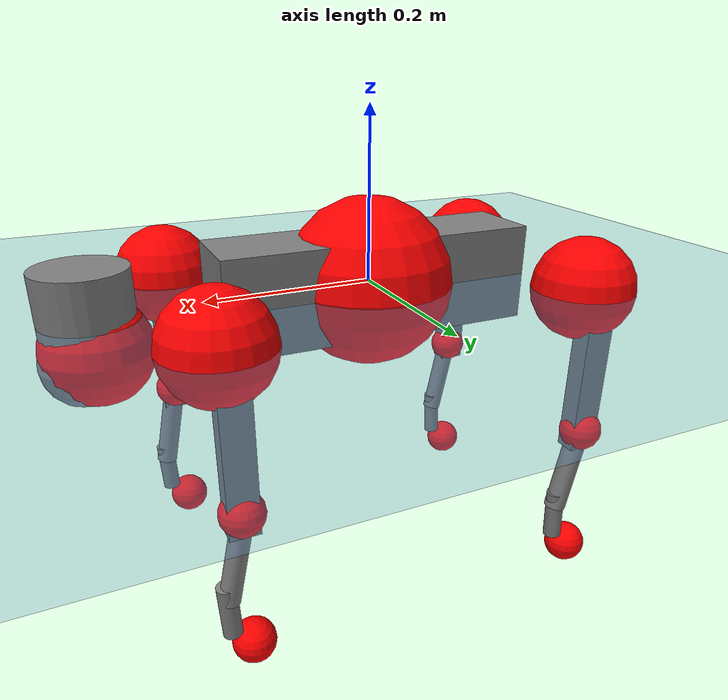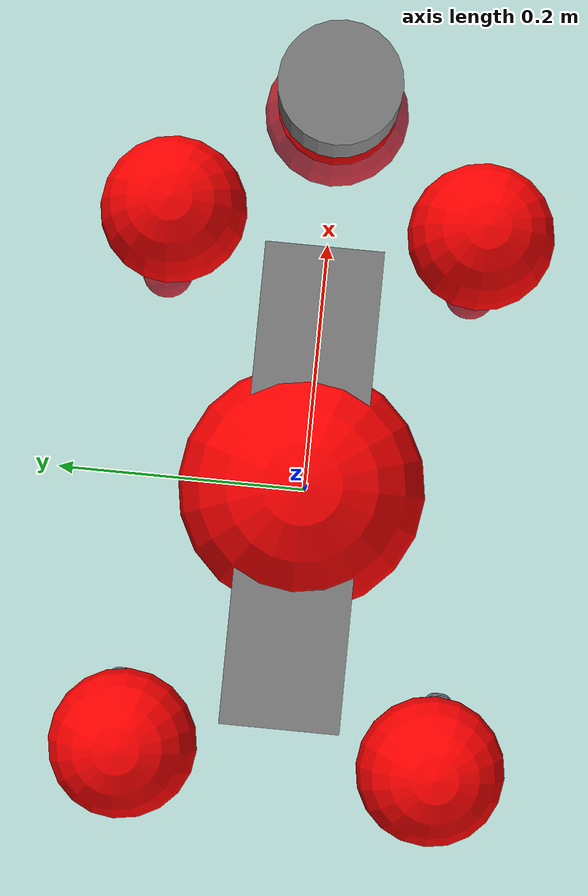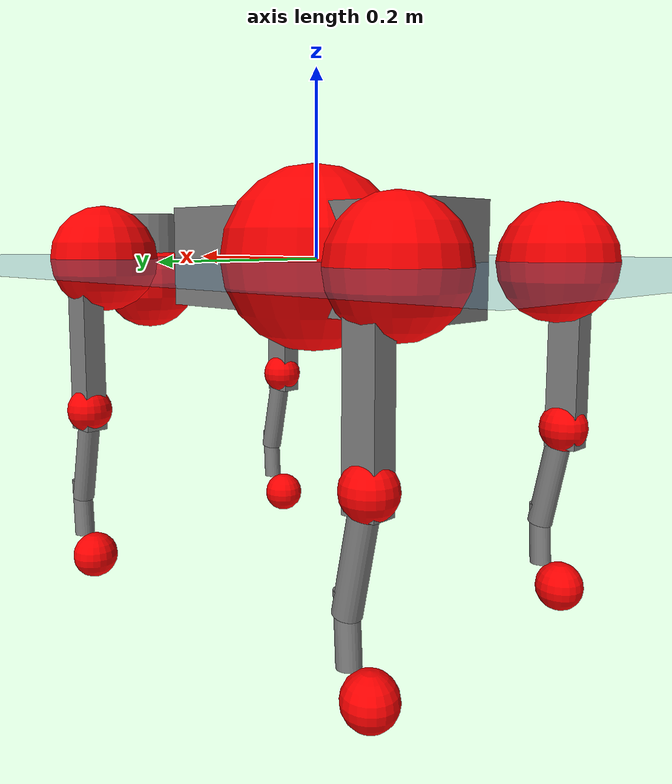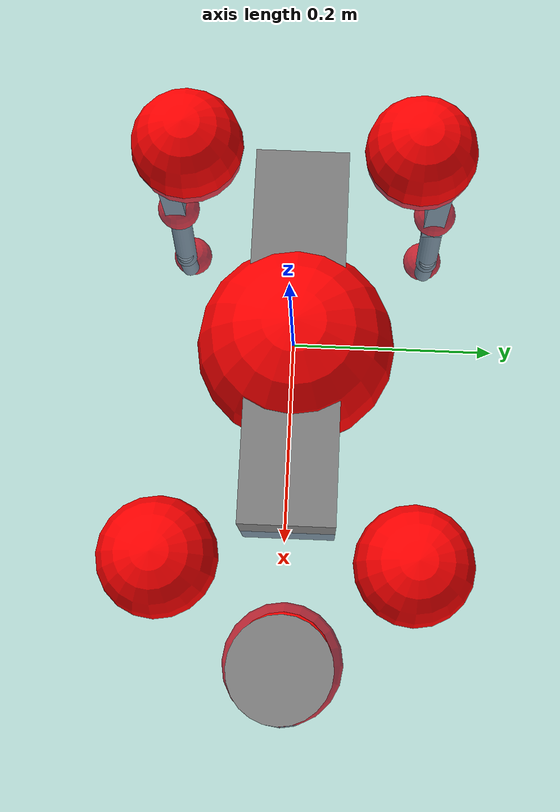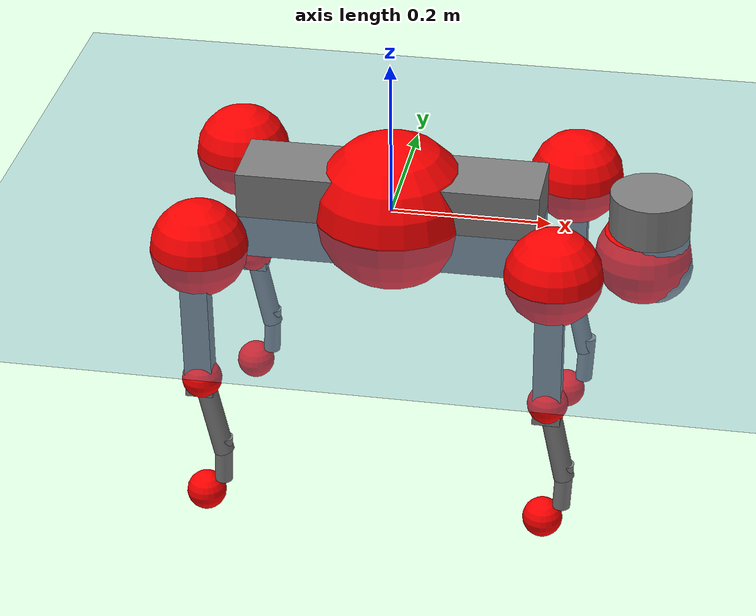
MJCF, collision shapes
<mujoco model="go2">
  <compiler angle="radian" assetdir="assets" balanceinertia="true" inertiafromgeom="false"/>

  <option timestep="0.005" density="1.2" viscosity="2e-05"/>

  <size nkey="1"/>

  <visual>
    <quality shadowsize="8192"/>
    <map shadowclip="0.5"/>
  </visual>

  <default>
    <default class="/">
      <geom contype="0" conaffinity="0" group="1" solref="-1000 -80"/>
      <site size="0.01 0.005 0.005" group="5"/>
      <general forcelimited="true" biastype="affine" gainprm="20" biasprm="0 -20 -0.5"/>
      <default class="go2">
        <joint armature="0.01" damping="0.01" frictionloss="0.2"/>
        <geom condim="1" margin="0.001"/>
        <default class="visual">
          <geom type="mesh" group="2"/>
        </default>
        <default class="collision">
          <geom group="3"/>
          <default class="foot">
            <geom size="0.022 0 0" condim="6" priority="1" friction="0.8 0.02 0.01" solimp="0.015 1 0.022"/>
          </default>
        </default>
        <default class="reward_collision_sphere">
          <geom group="5" rgba="1 0 0 1"/>
        </default>
      </default>
    </default>
  </default>

  <asset>
    <texture type="skybox" colorspace="auto" name="//unnamed_texture_0" builtin="gradient" rgb1="0.95 0.95 0.95" rgb2="0.95 0.95 0.95" width="100" height="600"/>
    <texture type="2d" colorspace="auto" name="texplane" builtin="checker" rgb1="0.345 0.575 0.748" rgb2="0.345 0.575 0.748" markrgb="1 1 1" width="512" height="512"/>
    <material name="MatPlane" class="/" texture="texplane" texuniform="true" texrepeat="2 2" specular="0.9"/>
    <material name="metal" class="/" rgba="0.9 0.95 0.95 1"/>
    <material name="black" class="/" rgba="0 0 0 1"/>
    <material name="white" class="/"/>
    <material name="gray" class="/" rgba="0.671705 0.692426 0.77427 1"/>
    <mesh name="base_0" class="/" file="base_0.obj"/>
    <mesh name="base_1" class="/" file="base_1.obj"/>
    <mesh name="base_2" class="/" file="base_2.obj"/>
    <mesh name="base_3" class="/" file="base_3.obj"/>
    <mesh name="base_4" class="/" file="base_4.obj"/>
    <mesh name="hip_0" class="/" file="hip_0.obj"/>
    <mesh name="hip_1" class="/" file="hip_1.obj"/>
    <mesh name="thigh_0" class="/" file="thigh_0.obj"/>
    <mesh name="thigh_1" class="/" file="thigh_1.obj"/>
    <mesh name="thigh_mirror_0" class="/" file="thigh_mirror_0.obj"/>
    <mesh name="thigh_mirror_1" class="/" file="thigh_mirror_1.obj"/>
    <mesh name="calf_0" class="/" file="calf_0.obj"/>
    <mesh name="calf_1" class="/" file="calf_1.obj"/>
    <mesh name="calf_mirror_0" class="/" file="calf_mirror_0.obj"/>
    <mesh name="calf_mirror_1" class="/" file="calf_mirror_1.obj"/>
    <mesh name="foot" class="/" file="foot.obj"/>
  </asset>

  <worldbody>
    <geom name="floor" class="/" size="100 100 0.125" type="plane" group="0" material="MatPlane"/>
    <light name="toplight_shadow" class="/" pos="0 0 5" dir="0.0990148 0.0990148 -0.990148" type="directional" ambient="0.04 0.04 0.04" diffuse="0.55 0.55 0.55" specular="0.12 0.12 0.12"/>
    <light name="toplight_fill" class="/" pos="0 0 5" dir="0.0990148 0.0990148 -0.990148" type="directional" castshadow="false" ambient="0.04 0.04 0.04" diffuse="0.3 0.3 0.3" specular="0.08 0.08 0.08"/>
    <body name="trunk" childclass="go2" pos="0.00128656 0.00240956 0.000969952" quat="1 -0.000343818 -0.000368337 -0.000252873">
      <inertial pos="0.0232945 0.000354144 -0.00443556" quat="0.0126359 0.710451 -0.00426845 0.703621" mass="7.12625" diaginertia="0.19877 0.15338 0.00821133"/>
      <joint name="//unnamed_joint_0" type="free" armature="0" damping="0" frictionloss="0"/>
      <geom name="//unnamed_geom_1" class="visual" material="black" mesh="base_0"/>
      <geom name="//unnamed_geom_2" class="visual" material="black" mesh="base_1"/>
      <geom name="//unnamed_geom_3" class="visual" material="black" mesh="base_2"/>
      <geom name="//unnamed_geom_4" class="visual" material="white" mesh="base_3"/>
      <geom name="//unnamed_geom_5" class="visual" material="gray" mesh="base_4"/>
      <geom name="trunk_1" class="collision" size="0.188731 0.0469068 0.0571911" type="box"/>
      <geom name="trunk_2" class="collision" size="0.0501676 0.0451509" pos="0.320068 0 0.00804888" type="cylinder"/>
      <geom name="trunk_3" class="collision" size="0.0471576" pos="0.329052 0 -0.0482933"/>
      <geom name="//unnamed_geom_9" class="reward_collision_sphere" size="0.100335"/>
      <geom name="//unnamed_geom_10" class="reward_collision_sphere" size="0.0602012" pos="0.314452 0 -0.0362199"/>
      <site name="imu" pos="-0.0212854 0.00135883 0.0323104" size="0.0100335"/>
      <camera name="track" pos="0 -2.16425 0" quat="0.707107 0.707107 0 0" mode="trackcom"/>
      <camera name="ego_camera" pos="0.35039 0 0.0362199" quat="-0.5 -0.5 0.5 0.5"/>
      <body name="FL_hip" pos="0.215884 0.0497324 -0.00193422" quat="1 -0.000292074 -0.000381268 -0.000533296">
        <inertial pos="-0.00690537 -4.58812e-05 0.000273467" quat="0.496814 0.500965 0.504927 0.497251" mass="0.685479" diaginertia="0.00158292 0.000866753 0.000164923"/>
        <joint name="FL_hip_joint" pos="0 0 0" axis="0.99999 0.00189633 0.004047" stiffness="0.00328234" range="-1.03012 1.0478" armature="0.00990258" damping="0.0130055" frictionloss="0.228436"/>
        <geom name="//unnamed_geom_11" class="visual" material="metal" mesh="hip_0"/>
        <geom name="//unnamed_geom_12" class="visual" material="gray" mesh="hip_1"/>
        <geom name="//unnamed_geom_13" class="collision" size="0.0461542 0.0200671" pos="0 0.0865702 0" quat="0.707107 0.707107 0 0" type="cylinder"/>
        <geom name="//unnamed_geom_14" class="reward_collision_sphere" size="0.0602012" pos="0 0.0757489 0"/>
        <body name="FL_thigh" pos="-0.00309267 0.102871 -0.00174277" quat="0.999999 -0.0001011 0.00142822 -0.000150171">
          <inertial pos="-0.00361143 -0.0237748 -0.0262844" quat="0.823491 0.0784186 -0.0235744 0.561388" mass="1.11906" diaginertia="0.0102547 0.00842859 0.000291742"/>
          <joint name="FL_thigh_joint" pos="0 0 0" axis="-0.013132 0.999854 -0.0109337" range="-1.51932 3.49206" armature="0.0110496" damping="0" frictionloss="0.172565"/>
          <geom name="//unnamed_geom_15" class="visual" material="metal" mesh="thigh_0"/>
          <geom name="//unnamed_geom_16" class="visual" material="gray" mesh="thigh_1"/>
          <geom name="//unnamed_geom_17" class="collision" size="0.106857 0.0122911 0.017057" pos="0 0 -0.0857205" quat="0.707107 0 0.707107 0" type="box"/>
          <body name="FL_calf" pos="-0.00108782 -4.17559e-05 -0.170619" quat="0.999999 -0.000297236 0.000391503 0.00118105">
            <inertial pos="0.00978584 -0.00128118 -0.112064" quat="0.711623 0.00485405 -0.00327061 0.702537" mass="0.261029" diaginertia="0.00267599 0.00225963 1.81693e-05"/>
            <joint name="FL_calf_joint" pos="0 0 0" axis="0.00483894 0.999988 -0.000968748" stiffness="0.00529211" range="-2.71781 -0.836808" armature="0.0102346" damping="0" frictionloss="0.192935"/>
            <geom name="//unnamed_geom_18" class="visual" material="gray" mesh="calf_0"/>
            <geom name="//unnamed_geom_19" class="visual" material="black" mesh="calf_1"/>
            <geom name="FL_calf0" class="collision" size="0.0120402 0.0602012" pos="0.00898435 0 -0.0482933" quat="0.994493 0 -0.104807 0" type="cylinder"/>
            <geom name="//unnamed_geom_21" class="collision" size="0.0110369 0.032609" pos="0.0224609 0 -0.119123" quat="0.999688 0 0.0249974 0" type="cylinder"/>
            <geom name="//unnamed_geom_22" class="visual" pos="0 0 -0.171441" quat="1 0 0 0" material="black" mesh="foot"/>
            <geom name="FL_foot" class="foot" size="0.022317" pos="-0.00224609 0 -0.171441"/>
            <geom name="//unnamed_geom_24" class="reward_collision_sphere" size="0.0250838"/>
            <geom name="//unnamed_geom_25" class="reward_collision_sphere" size="0.0250838" pos="-0.00224609 0 -0.171441"/>
            <site name="FL_foot" class="foot" pos="-0.00224609 0 -0.171441" size="0.0100335"/>
          </body>
        </body>
      </body>
      <body name="FR_hip" pos="0.217315 -0.0503909 -0.000726238" quat="1 0.000197141 0.000115629 -0.000141359">
        <inertial pos="-0.00594477 -0.000356407 -0.000123218" quat="0.489347 0.504048 0.498901 0.507516" mass="0.687865" diaginertia="0.00160981 0.000860522 0.000163565"/>
        <joint name="FR_hip_joint" pos="0 0 0" axis="0.999978 -0.00661575 0.00107481" range="-1.06532 1.0352" armature="0.0101459" damping="0.0123886" frictionloss="0.182656"/>
        <geom name="//unnamed_geom_26" class="visual" pos="0 2.41519e-09 1.03593e-07" quat="4.63268e-05 1 0 0" material="metal" mesh="hip_0"/>
        <geom name="//unnamed_geom_27" class="visual" pos="0 3.91532e-09 -2.56224e-07" quat="4.63268e-05 1 0 0" material="gray" mesh="hip_1"/>
        <geom name="//unnamed_geom_28" class="collision" size="0.0461542 0.0200671" pos="0 -0.0865702 0" quat="0.707107 0.707107 0 0" type="cylinder"/>
        <geom name="//unnamed_geom_29" class="reward_collision_sphere" size="0.0602012" pos="0 -0.0757489 0"/>
        <body name="FR_thigh" pos="0.000138563 -0.103104 0.00343168" quat="1 -3.75912e-05 -2.68538e-06 3.37008e-05">
          <inertial pos="-0.00684504 0.0235574 -0.0246549" quat="0.551619 -0.0206357 0.0843488 0.829563" mass="1.19522" diaginertia="0.0107449 0.0088929 0.000304085"/>
          <joint name="FR_thigh_joint" pos="0 0 0" axis="-0.00681565 -0.999923 0.0103742" stiffness="0.00982708" range="-3.4841 1.62622" armature="0.00918487" damping="0.00695764" frictionloss="0.206052"/>
          <geom name="//unnamed_geom_30" class="visual" material="metal" mesh="thigh_mirror_0"/>
          <geom name="//unnamed_geom_31" class="visual" material="gray" mesh="thigh_mirror_1"/>
          <geom name="//unnamed_geom_32" class="collision" size="0.106857 0.0122911 0.017057" pos="0 0 -0.0857205" quat="0.707107 0 0.707107 0" type="box"/>
          <body name="FR_calf" pos="-3.96676e-06 0.00216345 -0.169185" quat="1 -1.40881e-05 1.72699e-05 -6.4179e-06">
            <inertial pos="0.00627594 -0.00195913 -0.112094" quat="0.703018 -0.00576583 0.00222326 0.711145" mass="0.238586" diaginertia="0.00275701 0.00221703 1.79855e-05"/>
            <joint name="FR_calf_joint" pos="0 0 0" axis="0.0121851 -0.999901 -0.00699653" stiffness="0.00266345" range="0.82597 2.73837" armature="0.00988782" damping="0.0128874" frictionloss="0.215108"/>
            <geom name="//unnamed_geom_33" class="visual" material="gray" mesh="calf_mirror_0"/>
            <geom name="//unnamed_geom_34" class="visual" material="black" mesh="calf_mirror_1"/>
            <geom name="FR_calf0" class="collision" size="0.0130436 0.0602012" pos="0.0112304 0 -0.0482933" quat="0.995004 0 -0.0998334 0" type="cylinder"/>
            <geom name="//unnamed_geom_36" class="collision" size="0.0110369 0.032609" pos="0.0224609 0 -0.119123" quat="0.999688 0 0.0249974 0" type="cylinder"/>
            <geom name="//unnamed_geom_37" class="visual" pos="0 0 -0.171441" quat="1 0 0 0" material="black" mesh="foot"/>
            <geom name="FR_foot" class="foot" size="0.0197" pos="-0.00224609 0 -0.171441"/>
            <geom name="//unnamed_geom_39" class="reward_collision_sphere" size="0.0250838"/>
            <geom name="//unnamed_geom_40" class="reward_collision_sphere" size="0.0250838" pos="-0.00224609 0 -0.171441"/>
            <site name="FR_foot" class="foot" pos="-0.00224609 0 -0.171441" size="0.0100335"/>
          </body>
        </body>
      </body>
      <body name="RL_hip" pos="-0.218369 0.0481953 -0.00199787" quat="1 -2.5678e-05 -5.58625e-05 -4.02927e-05">
        <inertial pos="0.00669826 0.00253705 0.000345032" quat="0.509475 0.497507 0.49953 0.493348" mass="0.657757" diaginertia="0.00154314 0.000881376 0.000157971"/>
        <joint name="RL_hip_joint" pos="0 0 0" axis="-0.999906 -0.0105294 -0.00877089" stiffness="0.000985604" range="-0.996181 1.09196" armature="0.0099452" damping="0.0161844" frictionloss="0.179373"/>
        <geom name="//unnamed_geom_41" class="visual" pos="-2.77165e-09 0 -5.43307e-07" quat="4.63268e-05 0 1 0" material="metal" mesh="hip_0"/>
        <geom name="//unnamed_geom_42" class="visual" pos="-4.49317e-09 0 -4.81836e-07" quat="4.63268e-05 0 1 0" material="gray" mesh="hip_1"/>
        <geom name="//unnamed_geom_43" class="collision" size="0.0461542 0.0200671" pos="0 0.0865702 0" quat="0.707107 0.707107 0 0" type="cylinder"/>
        <geom name="//unnamed_geom_44" class="reward_collision_sphere" size="0.0602012" pos="0 0.0757489 0"/>
        <body name="RL_thigh" pos="0.00278491 0.105352 -0.00118055" quat="0.999999 -0.000677945 0.000817658 -0.000562035">
          <inertial pos="-0.00337364 -0.0237592 -0.0273779" quat="0.832858 0.0930358 -0.0186399 0.545293" mass="1.21071" diaginertia="0.010596 0.00882108 0.000306931"/>
          <joint name="RL_thigh_joint" pos="0 0 0" axis="0.00438616 0.999988 -0.00221597" range="-0.471548 4.59639" armature="0.0103917" damping="0.00946324" frictionloss="0.218154"/>
          <geom name="//unnamed_geom_45" class="visual" material="metal" mesh="thigh_0"/>
          <geom name="//unnamed_geom_46" class="visual" material="gray" mesh="thigh_1"/>
          <geom name="//unnamed_geom_47" class="collision" size="0.106857 0.0122911 0.017057" pos="0 0 -0.0857205" quat="0.707107 0 0.707107 0" type="box"/>
          <body name="RL_calf" pos="-0.0024997 0.00138538 -0.171837" quat="1 -5.647e-05 -0.000126395 -0.000104044">
            <inertial pos="0.00621297 -0.000680287 -0.114647" quat="0.715964 -0.00872065 0.0014335 0.698081" mass="0.241459" diaginertia="0.00269464 0.00210654 1.78534e-05"/>
            <joint name="RL_calf_joint" pos="0 0 0" axis="0.00553719 0.999726 0.0227556" range="-2.70381 -0.888439" armature="0.0105777" damping="0" frictionloss="0.179157"/>
            <geom name="//unnamed_geom_48" class="visual" material="gray" mesh="calf_0"/>
            <geom name="//unnamed_geom_49" class="visual" material="black" mesh="calf_1"/>
            <geom name="RL_calf0" class="collision" size="0.0130436 0.0602012" pos="0.0112304 0 -0.0482933" quat="0.995004 0 -0.0998334 0" type="cylinder"/>
            <geom name="//unnamed_geom_51" class="collision" size="0.0110369 0.032609" pos="0.0224609 0 -0.119123" quat="0.999688 0 0.0249974 0" type="cylinder"/>
            <geom name="//unnamed_geom_52" class="visual" pos="0 0 -0.171441" quat="1 0 0 0" material="black" mesh="foot"/>
            <geom name="RL_foot" class="foot" size="0.0194752" pos="-0.00224609 0 -0.171441"/>
            <geom name="//unnamed_geom_54" class="reward_collision_sphere" size="0.0250838"/>
            <geom name="//unnamed_geom_55" class="reward_collision_sphere" size="0.0250838" pos="-0.00224609 0 -0.171441"/>
            <site name="RL_foot" class="foot" pos="-0.00224609 0 -0.171441" size="0.0100335"/>
          </body>
        </body>
      </body>
      <body name="RR_hip" pos="-0.217057 -0.0491377 -0.00257287" quat="0.999999 0.000385188 -0.00100425 -8.14329e-05">
        <inertial pos="0.00856614 0.000729086 3.00782e-05" quat="0.498685 0.495644 0.498325 0.50727" mass="0.679714" diaginertia="0.00162772 0.000910131 0.000166994"/>
        <joint name="RR_hip_joint" pos="0 0 0" axis="-1 -0.000358483 -0.000518789" range="-1.04853 1.08643" armature="0.00895657" damping="0.0193201" frictionloss="0.196236"/>
        <geom name="//unnamed_geom_56" class="visual" pos="2.77023e-09 2.41519e-09 -6.469e-07" quat="2.14617e-09 4.63268e-05 4.63268e-05 -1" material="metal" mesh="hip_0"/>
        <geom name="//unnamed_geom_57" class="visual" pos="4.49668e-09 3.91532e-09 -2.25612e-07" quat="2.14617e-09 4.63268e-05 4.63268e-05 -1" material="gray" mesh="hip_1"/>
        <geom name="//unnamed_geom_58" class="collision" size="0.0461542 0.0200671" pos="0 -0.0865702 0" quat="0.707107 0.707107 0 0" type="cylinder"/>
        <geom name="//unnamed_geom_59" class="reward_collision_sphere" size="0.0602012" pos="0 -0.0757489 0"/>
        <body name="RR_thigh" pos="0.000357748 -0.1055 0.0002038" quat="0.999999 0.000237321 -0.00119881 0.000506803">
          <inertial pos="-0.00298868 0.0251909 -0.0246418" quat="0.552068 -0.0201412 0.086317 0.829075" mass="1.14492" diaginertia="0.0107376 0.00885328 0.000294767"/>
          <joint name="RR_thigh_joint" pos="0 0 0" axis="-0.00422362 -0.999825 0.0182419" range="-4.53112 0.56811" armature="0.0108314" damping="0.00484391" frictionloss="0.172813"/>
          <geom name="//unnamed_geom_60" class="visual" material="metal" mesh="thigh_mirror_0"/>
          <geom name="//unnamed_geom_61" class="visual" material="gray" mesh="thigh_mirror_1"/>
          <geom name="//unnamed_geom_62" class="collision" size="0.106857 0.0122911 0.017057" pos="0 0 -0.0857205" quat="0.707107 0 0.707107 0" type="box"/>
          <body name="RR_calf" pos="0.00162775 0.00115922 -0.17214" quat="1 -4.57497e-05 0.000127314 0.000472306">
            <inertial pos="0.00563421 0.000630089 -0.113345" quat="0.706334 -0.00598988 0.00422486 0.707841" mass="0.251469" diaginertia="0.00259875 0.00223573 1.82142e-05"/>
            <joint name="RR_calf_joint" pos="0 0 0" axis="0.00106128 -0.999988 0.00468242" range="0.792195 2.73606" armature="0.00996277" damping="0.0192957" frictionloss="0.205455"/>
            <geom name="//unnamed_geom_63" class="visual" material="gray" mesh="calf_mirror_0"/>
            <geom name="//unnamed_geom_64" class="visual" material="black" mesh="calf_mirror_1"/>
            <geom name="RR_calf0" class="collision" size="0.0130436 0.0602012" pos="0.0112304 0 -0.0482933" quat="0.995004 0 -0.0998334 0" type="cylinder"/>
            <geom name="//unnamed_geom_66" class="collision" size="0.0110369 0.032609" pos="0.0224609 0 -0.119123" quat="0.999688 0 0.0249974 0" type="cylinder"/>
            <geom name="//unnamed_geom_67" class="visual" pos="0 0 -0.171441" quat="1 0 0 0" material="black" mesh="foot"/>
            <geom name="RR_foot" class="foot" size="0.0218162" pos="-0.00224609 0 -0.171441"/>
            <geom name="//unnamed_geom_69" class="reward_collision_sphere" size="0.0250838"/>
            <geom name="//unnamed_geom_70" class="reward_collision_sphere" size="0.0250838" pos="-0.00224609 0 -0.171441"/>
            <site name="RR_foot" class="foot" pos="-0.00224609 0 -0.171441" size="0.0100335"/>
          </body>
        </body>
      </body>
    </body>
  </worldbody>

  <contact>
    <pair class="/" geom1="floor" geom2="FL_foot" name="//unnamed_contact_0"/>
    <pair class="/" geom1="floor" geom2="FR_foot" name="//unnamed_contact_1"/>
    <pair class="/" geom1="floor" geom2="RL_foot" name="//unnamed_contact_2"/>
    <pair class="/" geom1="floor" geom2="RR_foot" name="//unnamed_contact_3"/>
  </contact>

  <actuator>
    <general name="FL_hip" class="/" joint="FL_hip_joint" forcerange="-23.6974 23.6974" gainprm="20.4038" biasprm="0 -20.4038 -0.522824"/>
    <general name="FL_thigh" class="/" joint="FL_thigh_joint" forcerange="-22.2405 22.2405" gainprm="20.4038" biasprm="0 -20.4038 -0.522824"/>
    <general name="FL_calf" class="/" joint="FL_calf_joint" forcerange="-50.1924 50.1924" gainprm="20.4038" biasprm="0 -20.4038 -0.522824"/>
    <general name="FR_hip" class="/" joint="FR_hip_joint" forcerange="-23.5561 23.5561" gainprm="20.4038" biasprm="0 -20.4038 -0.522824"/>
    <general name="FR_thigh" class="/" joint="FR_thigh_joint" forcerange="-23.2257 23.2257" gainprm="20.4038" biasprm="0 -20.4038 -0.522824"/>
    <general name="FR_calf" class="/" joint="FR_calf_joint" forcerange="-49.709 49.709" gainprm="20.4038" biasprm="0 -20.4038 -0.522824"/>
    <general name="RL_hip" class="/" joint="RL_hip_joint" forcerange="-23.6161 23.6161" gainprm="20.4038" biasprm="0 -20.4038 -0.522824"/>
    <general name="RL_thigh" class="/" joint="RL_thigh_joint" forcerange="-26.2187 26.2187" gainprm="20.4038" biasprm="0 -20.4038 -0.522824"/>
    <general name="RL_calf" class="/" joint="RL_calf_joint" forcerange="-40.8003 40.8003" gainprm="20.4038" biasprm="0 -20.4038 -0.522824"/>
    <general name="RR_hip" class="/" joint="RR_hip_joint" forcerange="-24.6885 24.6885" gainprm="20.4038" biasprm="0 -20.4038 -0.522824"/>
    <general name="RR_thigh" class="/" joint="RR_thigh_joint" forcerange="-25.3578 25.3578" gainprm="20.4038" biasprm="0 -20.4038 -0.522824"/>
    <general name="RR_calf" class="/" joint="RR_calf_joint" forcerange="-46.1899 46.1899" gainprm="20.4038" biasprm="0 -20.4038 -0.522824"/>
  </actuator>

  <sensor>
    <gyro site="imu" name="imu_angular_velocity"/>
    <velocimeter site="imu" name="imu_linear_velocity"/>
    <framelinvel objtype="site" objname="FL_foot" name="FL_foot_global_linear_velocity"/>
    <framelinvel objtype="site" objname="FR_foot" name="FR_foot_global_linear_velocity"/>
    <framelinvel objtype="site" objname="RL_foot" name="RL_foot_global_linear_velocity"/>
    <framelinvel objtype="site" objname="RR_foot" name="RR_foot_global_linear_velocity"/>
  </sensor>

  <keyframe>
    <key name="home" qpos="0 0 0.325 1 0 0 0 0.1 0.8 -1.5 -0.1 -0.8 1.5 -0.1 0.8 -1.5 0.1 -0.8 1.5"/>
  </keyframe>
</mujoco>
